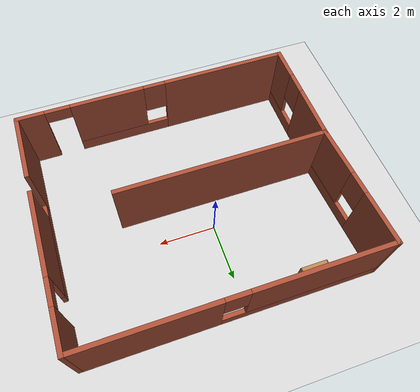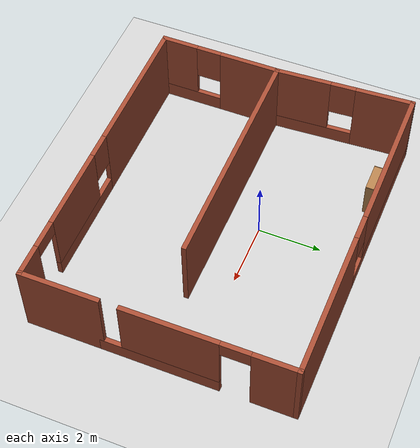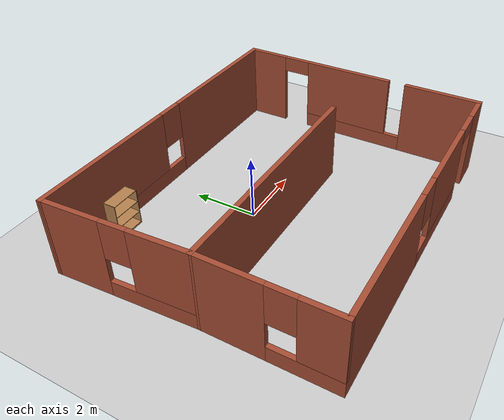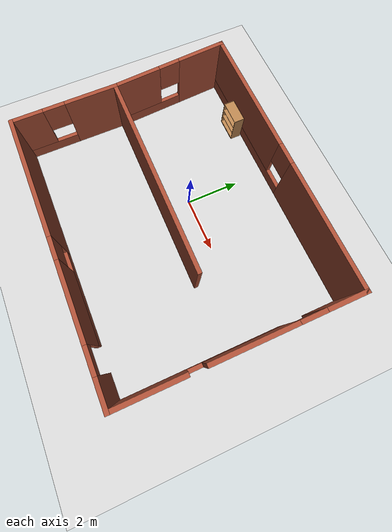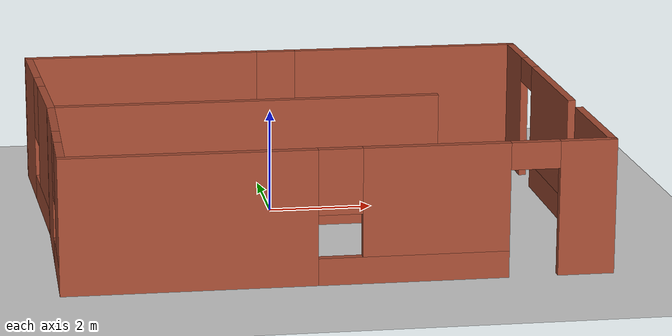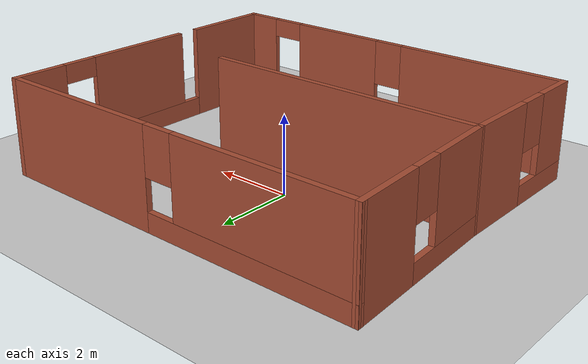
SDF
<sdf version="1.7">
 <world name="default">
  <light name="sun" type="directional">
   <pose>0 0 10 0 -0 0</pose>
   <diffuse>0.8 0.8 0.8 1</diffuse>
   <specular>0.2 0.2 0.2 1</specular>
   <attenuation>
    <range>1000</range>
    <constant>0.9</constant>
    <linear>0.01</linear>
    <quadratic>0.001</quadratic>
   </attenuation>
   <direction>-0.5 0.1 -0.9</direction>
   <spot><inner_angle>0</inner_angle><outer_angle>0</outer_angle><falloff>0</falloff></spot>
  </light>
  <model name="ground_plane">
   <static>1</static>
   <link name="link">
    <collision name="collision">
     <geometry><plane><normal>0 0 1</normal><size>100 100</size></plane></geometry>
     <surface><friction><ode><mu>100</mu><mu2>50</mu2></ode></friction></surface>
    </collision>
    <visual name="visual">
     <cast_shadows>0</cast_shadows>
     <geometry><plane><normal>0 0 1</normal><size>100 100</size></plane></geometry>
     <material>
      <script><uri>file://media/materials/scripts/gazebo.material</uri><name>Gazebo/Grey</name></script>
     </material>
    </visual>
   </link>
  </model>
  <gravity>0 0 -9.8</gravity>
  <magnetic_field>6e-06 2.3e-05 -4.2e-05</magnetic_field>
  <atmosphere type="adiabatic"/>
  <physics type="ode">
   <max_step_size>0.001</max_step_size>
   <real_time_factor>1</real_time_factor>
   <real_time_update_rate>1000</real_time_update_rate>
  </physics>
  <scene><ambient>0.4 0.4 0.4 1</ambient><background>0.7 0.7 0.7 1</background><shadows>1</shadows></scene>
  <spherical_coordinates>
   <surface_model>EARTH_WGS84</surface_model>
   <latitude_deg>0</latitude_deg>
   <longitude_deg>0</longitude_deg>
   <elevation>0</elevation>
   <heading_deg>0</heading_deg>
  </spherical_coordinates>
  <model name="house">
   <pose>0.48791 -0.84791 0 0 -0 0</pose>
   <link name="Wall_0">
    <pose>-4.79791 -2.17709 0 0 -0 -1.5708</pose>
    <visual name="Wall_0_Visual_0">
     <pose>-1.00865 0 1.25 0 -0 0</pose>
     <geometry><box><size>1.9827 0.15 2.5</size></box></geometry>
     <material>
      <script><uri>file://media/materials/scripts/gazebo.material</uri><name>Gazebo/Bricks</name></script>
      <ambient>1 1 1 1</ambient>
     </material>
     <meta><layer>0</layer></meta>
    </visual>
    <collision name="Wall_0_Collision_0">
     <geometry><box><size>1.9827 0.15 2.5</size></box></geometry>
     <pose>-1.00865 0 1.25 0 -0 0</pose>
    </collision>
    <visual name="Wall_0_Visual_1">
     <pose>0.991352 0 0.25 0 -0 0</pose>
     <geometry><box><size>2.01729 0.15 0.5</size></box></geometry>
     <material>
      <script><uri>file://media/materials/scripts/gazebo.material</uri><name>Gazebo/Bricks</name></script>
      <ambient>1 1 1 1</ambient>
     </material>
     <meta><layer>0</layer></meta>
    </visual>
    <collision name="Wall_0_Collision_1">
     <geometry><box><size>2.01729 0.15 0.5</size></box></geometry>
     <pose>0.991352 0 0.25 0 -0 0</pose>
    </collision>
    <visual name="Wall_0_Visual_2">
     <pose>1.39135 0 1.5 0 -0 0</pose>
     <geometry><box><size>1.2173 0.15 2</size></box></geometry>
     <material>
      <script><uri>file://media/materials/scripts/gazebo.material</uri><name>Gazebo/Bricks</name></script>
      <ambient>1 1 1 1</ambient>
     </material>
     <meta><layer>0</layer></meta>
    </visual>
    <collision name="Wall_0_Collision_2">
     <geometry><box><size>1.2173 0.15 2</size></box></geometry>
     <pose>1.39135 0 1.5 0 -0 0</pose>
    </collision>
    <visual name="Wall_0_Visual_3">
     <pose>0.382705 0 1.9 0 -0 0</pose>
     <geometry><box><size>0.8 0.15 1.2</size></box></geometry>
     <material>
      <script><uri>file://media/materials/scripts/gazebo.material</uri><name>Gazebo/Bricks</name></script>
      <ambient>1 1 1 1</ambient>
     </material>
     <meta><layer>0</layer></meta>
    </visual>
    <collision name="Wall_0_Collision_3">
     <geometry><box><size>0.8 0.15 1.2</size></box></geometry>
     <pose>0.382705 0 1.9 0 -0 0</pose>
    </collision>
   </link>
   <link name="Wall_1">
    <pose>0.12709 -4.10209 0 0 -0 0</pose>
    <visual name="Wall_1_Visual_0">
     <pose>-2.70574 0 1.25 0 -0 0</pose>
     <geometry><box><size>4.58852 0.15 2.5</size></box></geometry>
     <material>
      <script><uri>file://media/materials/scripts/gazebo.material</uri><name>Gazebo/Bricks</name></script>
      <ambient>1 1 1 1</ambient>
     </material>
     <meta><layer>0</layer></meta>
    </visual>
    <collision name="Wall_1_Collision_0">
     <geometry><box><size>4.58852 0.15 2.5</size></box></geometry>
     <pose>-2.70574 0 1.25 0 -0 0</pose>
    </collision>
    <visual name="Wall_1_Visual_1">
     <pose>4.47919 0 1.25 0 -0 0</pose>
     <geometry><box><size>1.04161 0.15 2.5</size></box></geometry>
     <material>
      <script><uri>file://media/materials/scripts/gazebo.material</uri><name>Gazebo/Bricks</name></script>
      <ambient>1 1 1 1</ambient>
     </material>
     <meta><layer>0</layer></meta>
    </visual>
    <collision name="Wall_1_Collision_1">
     <geometry><box><size>1.04161 0.15 2.5</size></box></geometry>
     <pose>4.47919 0 1.25 0 -0 0</pose>
    </collision>
    <visual name="Wall_1_Visual_2">
     <pose>1.32345 0 0.25 0 -0 0</pose>
     <geometry><box><size>3.46988 0.15 0.5</size></box></geometry>
     <material>
      <script><uri>file://media/materials/scripts/gazebo.material</uri><name>Gazebo/Bricks</name></script>
      <ambient>1 1 1 1</ambient>
     </material>
     <meta><layer>0</layer></meta>
    </visual>
    <collision name="Wall_1_Collision_2">
     <geometry><box><size>3.46988 0.15 0.5</size></box></geometry>
     <pose>1.32345 0 0.25 0 -0 0</pose>
    </collision>
    <visual name="Wall_1_Visual_3">
     <pose>1.72345 0 1.5 0 -0 0</pose>
     <geometry><box><size>2.66988 0.15 2</size></box></geometry>
     <material>
      <script><uri>file://media/materials/scripts/gazebo.material</uri><name>Gazebo/Bricks</name></script>
      <ambient>1 1 1 1</ambient>
     </material>
     <meta><layer>0</layer></meta>
    </visual>
    <collision name="Wall_1_Collision_3">
     <geometry><box><size>2.66988 0.15 2</size></box></geometry>
     <pose>1.72345 0 1.5 0 -0 0</pose>
    </collision>
    <visual name="Wall_1_Visual_4">
     <pose>-0.011485 0 1.9 0 -0 0</pose>
     <geometry><box><size>0.8 0.15 1.2</size></box></geometry>
     <material>
      <script><uri>file://media/materials/scripts/gazebo.material</uri><name>Gazebo/Bricks</name></script>
      <ambient>1 1 1 1</ambient>
     </material>
     <meta><layer>0</layer></meta>
    </visual>
    <collision name="Wall_1_Collision_4">
     <geometry><box><size>0.8 0.15 1.2</size></box></geometry>
     <pose>-0.011485 0 1.9 0 -0 0</pose>
    </collision>
    <visual name="Wall_1_Visual_5">
     <pose>3.50839 0 2.25 0 -0 0</pose>
     <geometry><box><size>0.9 0.15 0.5</size></box></geometry>
     <material>
      <script><uri>file://media/materials/scripts/gazebo.material</uri><name>Gazebo/Bricks</name></script>
      <ambient>1 1 1 1</ambient>
     </material>
     <meta><layer>0</layer></meta>
    </visual>
    <collision name="Wall_1_Collision_5">
     <geometry><box><size>0.9 0.15 0.5</size></box></geometry>
     <pose>3.50839 0 2.25 0 -0 0</pose>
    </collision>
   </link>
   <link name="Wall_2">
    <collision name="Wall_2_Collision">
     <geometry><box><size>2.5 0.15 2.5</size></box></geometry>
     <pose>0 0 1.25 0 -0 0</pose>
    </collision>
    <visual name="Wall_2_Visual">
     <pose>0 0 1.25 0 -0 0</pose>
     <geometry><box><size>2.5 0.15 2.5</size></box></geometry>
     <material>
      <script><uri>file://media/materials/scripts/gazebo.material</uri><name>Gazebo/Bricks</name></script>
      <ambient>1 1 1 1</ambient>
     </material>
     <meta><layer>0</layer></meta>
    </visual>
    <pose>5.05209 -2.92709 0 0 -0 1.5708</pose>
   </link>
   <link name="Wall_3">
    <pose>5.05209 1.17291 0 0 -0 1.5708</pose>
    <visual name="Wall_3_Visual_0">
     <pose>-1.16767 0 0.25 0 -0 0</pose>
     <geometry><box><size>3.66467 0.15 0.5</size></box></geometry>
     <material>
      <script><uri>file://media/materials/scripts/gazebo.material</uri><name>Gazebo/Bricks</name></script>
      <ambient>1 1 1 1</ambient>
     </material>
     <meta><layer>0</layer></meta>
    </visual>
    <collision name="Wall_3_Collision_0">
     <geometry><box><size>3.66467 0.15 0.5</size></box></geometry>
     <pose>-1.16767 0 0.25 0 -0 0</pose>
    </collision>
    <visual name="Wall_3_Visual_1">
     <pose>2.28233 0 1.25 0 -0 0</pose>
     <geometry><box><size>1.43533 0.15 2.5</size></box></geometry>
     <material>
      <script><uri>file://media/materials/scripts/gazebo.material</uri><name>Gazebo/Bricks</name></script>
      <ambient>1 1 1 1</ambient>
     </material>
     <meta><layer>0</layer></meta>
    </visual>
    <collision name="Wall_3_Collision_1">
     <geometry><box><size>1.43533 0.15 2.5</size></box></geometry>
     <pose>2.28233 0 1.25 0 -0 0</pose>
    </collision>
    <visual name="Wall_3_Visual_2">
     <pose>-0.821123 0 1.5 0 -0 0</pose>
     <geometry><box><size>2.97158 0.15 2</size></box></geometry>
     <material>
      <script><uri>file://media/materials/scripts/gazebo.material</uri><name>Gazebo/Bricks</name></script>
      <ambient>1 1 1 1</ambient>
     </material>
     <meta><layer>0</layer></meta>
    </visual>
    <collision name="Wall_3_Collision_2">
     <geometry><box><size>2.97158 0.15 2</size></box></geometry>
     <pose>-0.821123 0 1.5 0 -0 0</pose>
    </collision>
    <visual name="Wall_3_Visual_3">
     <pose>1.11467 0 2.25 0 -0 0</pose>
     <geometry><box><size>0.9 0.15 0.5</size></box></geometry>
     <material>
      <script><uri>file://media/materials/scripts/gazebo.material</uri><name>Gazebo/Bricks</name></script>
      <ambient>1 1 1 1</ambient>
     </material>
     <meta><layer>0</layer></meta>
    </visual>
    <collision name="Wall_3_Collision_3">
     <geometry><box><size>0.9 0.15 0.5</size></box></geometry>
     <pose>1.11467 0 2.25 0 -0 0</pose>
    </collision>
   </link>
   <link name="Wall_4">
    <pose>0.00209 4.09791 0 0 -0 3.14159</pose>
    <visual name="Wall_4_Visual_0">
     <pose>-2.78909 0 1.25 0 -0 0</pose>
     <geometry><box><size>4.67183 0.15 2.5</size></box></geometry>
     <material>
      <script><uri>file://media/materials/scripts/gazebo.material</uri><name>Gazebo/Bricks</name></script>
      <ambient>1 1 1 1</ambient>
     </material>
     <meta><layer>0</layer></meta>
    </visual>
    <collision name="Wall_4_Collision_0">
     <geometry><box><size>4.67183 0.15 2.5</size></box></geometry>
     <pose>-2.78909 0 1.25 0 -0 0</pose>
    </collision>
    <visual name="Wall_4_Visual_1">
     <pose>2.33591 0 0.25 0 -0 0</pose>
     <geometry><box><size>5.57817 0.15 0.5</size></box></geometry>
     <material>
      <script><uri>file://media/materials/scripts/gazebo.material</uri><name>Gazebo/Bricks</name></script>
      <ambient>1 1 1 1</ambient>
     </material>
     <meta><layer>0</layer></meta>
    </visual>
    <collision name="Wall_4_Collision_1">
     <geometry><box><size>5.57817 0.15 0.5</size></box></geometry>
     <pose>2.33591 0 0.25 0 -0 0</pose>
    </collision>
    <visual name="Wall_4_Visual_2">
     <pose>2.73591 0 1.5 0 -0 0</pose>
     <geometry><box><size>4.77817 0.15 2</size></box></geometry>
     <material>
      <script><uri>file://media/materials/scripts/gazebo.material</uri><name>Gazebo/Bricks</name></script>
      <ambient>1 1 1 1</ambient>
     </material>
     <meta><layer>0</layer></meta>
    </visual>
    <collision name="Wall_4_Collision_2">
     <geometry><box><size>4.77817 0.15 2</size></box></geometry>
     <pose>2.73591 0 1.5 0 -0 0</pose>
    </collision>
    <visual name="Wall_4_Visual_3">
     <pose>-0.053174 0 1.9 0 -0 0</pose>
     <geometry><box><size>0.8 0.15 1.2</size></box></geometry>
     <material>
      <script><uri>file://media/materials/scripts/gazebo.material</uri><name>Gazebo/Bricks</name></script>
      <ambient>1 1 1 1</ambient>
     </material>
     <meta><layer>0</layer></meta>
    </visual>
    <collision name="Wall_4_Collision_3">
     <geometry><box><size>0.8 0.15 1.2</size></box></geometry>
     <pose>-0.053174 0 1.9 0 -0 0</pose>
    </collision>
   </link>
   <link name="Wall_5">
    <pose>-4.92291 1.92291 0 0 -0 -1.51339</pose>
    <visual name="Wall_5_Visual_0">
     <pose>-1.31835 0 1.25 0 -0 0</pose>
     <geometry><box><size>1.87048 0.15 2.5</size></box></geometry>
     <material>
      <script><uri>file://media/materials/scripts/gazebo.material</uri><name>Gazebo/Bricks</name></script>
      <ambient>1 1 1 1</ambient>
     </material>
     <meta><layer>0</layer></meta>
    </visual>
    <collision name="Wall_5_Collision_0">
     <geometry><box><size>1.87048 0.15 2.5</size></box></geometry>
     <pose>-1.31835 0 1.25 0 -0 0</pose>
    </collision>
    <visual name="Wall_5_Visual_1">
     <pose>0.935239 0 0.25 0 -0 0</pose>
     <geometry><box><size>2.6367 0.15 0.5</size></box></geometry>
     <material>
      <script><uri>file://media/materials/scripts/gazebo.material</uri><name>Gazebo/Bricks</name></script>
      <ambient>1 1 1 1</ambient>
     </material>
     <meta><layer>0</layer></meta>
    </visual>
    <collision name="Wall_5_Collision_1">
     <geometry><box><size>2.6367 0.15 0.5</size></box></geometry>
     <pose>0.935239 0 0.25 0 -0 0</pose>
    </collision>
    <visual name="Wall_5_Visual_2">
     <pose>1.33524 0 1.5 0 -0 0</pose>
     <geometry><box><size>1.8367 0.15 2</size></box></geometry>
     <material>
      <script><uri>file://media/materials/scripts/gazebo.material</uri><name>Gazebo/Bricks</name></script>
      <ambient>1 1 1 1</ambient>
     </material>
     <meta><layer>0</layer></meta>
    </visual>
    <collision name="Wall_5_Collision_2">
     <geometry><box><size>1.8367 0.15 2</size></box></geometry>
     <pose>1.33524 0 1.5 0 -0 0</pose>
    </collision>
    <visual name="Wall_5_Visual_3">
     <pose>0.01689 0 1.9 0 -0 0</pose>
     <geometry><box><size>0.8 0.15 1.2</size></box></geometry>
     <material>
      <script><uri>file://media/materials/scripts/gazebo.material</uri><name>Gazebo/Bricks</name></script>
      <ambient>1 1 1 1</ambient>
     </material>
     <meta><layer>0</layer></meta>
    </visual>
    <collision name="Wall_5_Collision_3">
     <geometry><box><size>0.8 0.15 1.2</size></box></geometry>
     <pose>0.01689 0 1.9 0 -0 0</pose>
    </collision>
   </link>
   <link name="Wall_6">
    <collision name="Wall_6_Collision">
     <geometry><box><size>7.5 0.15 2.5</size></box></geometry>
     <pose>0 0 1.25 0 -0 0</pose>
    </collision>
    <visual name="Wall_6_Visual">
     <pose>0 0 1.25 0 -0 0</pose>
     <geometry><box><size>7.5 0.15 2.5</size></box></geometry>
     <material>
      <script><uri>file://media/materials/scripts/gazebo.material</uri><name>Gazebo/Bricks</name></script>
      <ambient>1 1 1 1</ambient>
     </material>
     <meta><layer>0</layer></meta>
    </visual>
    <pose>-1.12291 -0.25209 0 0 -0 0</pose>
   </link>
   <static>1</static>
  </model>
  <model name="Bookshelf">
   <static>1</static>
   <link name="link">
    <inertial><mass>1</mass></inertial>
    <collision name="back">
     <pose>0 0.005 0.6 0 -0 0</pose>
     <geometry><box><size>0.9 0.01 1.2</size></box></geometry>
    </collision>
    <visual name="visual1">
     <pose>0 0.005 0.6 0 -0 0</pose>
     <geometry><box><size>0.9 0.01 1.2</size></box></geometry>
     <material>
      <diffuse>1 1 1 1</diffuse>
      <script><uri>file://media/materials/scripts/gazebo.material</uri><name>Gazebo/Wood</name></script>
      <pbr><metal><albedo_map>model://Bookshelf/bookshelf_diffuse.jpg</albedo_map></metal></pbr>
     </material>
    </visual>
    <collision name="left_side">
     <pose>0.45 -0.195 0.6 0 -0 0</pose>
     <geometry><box><size>0.02 0.4 1.2</size></box></geometry>
    </collision>
    <visual name="visual2">
     <pose>0.45 -0.195 0.6 0 -0 0</pose>
     <geometry><box><size>0.02 0.4 1.2</size></box></geometry>
     <material>
      <diffuse>1 1 1 1</diffuse>
      <script><uri>file://media/materials/scripts/gazebo.material</uri><name>Gazebo/Wood</name></script>
      <pbr><metal><albedo_map>model://Bookshelf/bookshelf_diffuse.jpg</albedo_map></metal></pbr>
     </material>
    </visual>
    <collision name="right_side">
     <pose>-0.45 -0.195 0.6 0 -0 0</pose>
     <geometry><box><size>0.02 0.4 1.2</size></box></geometry>
    </collision>
    <visual name="visual3">
     <pose>-0.45 -0.195 0.6 0 -0 0</pose>
     <geometry><box><size>0.02 0.4 1.2</size></box></geometry>
     <material>
      <diffuse>1 1 1 1</diffuse>
      <script><uri>file://media/materials/scripts/gazebo.material</uri><name>Gazebo/Wood</name></script>
      <pbr><metal><albedo_map>model://Bookshelf/bookshelf_diffuse.jpg</albedo_map></metal></pbr>
     </material>
    </visual>
    <collision name="bottom">
     <pose>0 -0.195 0.03 0 -0 0</pose>
     <geometry><box><size>0.88 0.4 0.06</size></box></geometry>
    </collision>
    <visual name="visual4">
     <pose>0 -0.195 0.03 0 -0 0</pose>
     <geometry><box><size>0.88 0.4 0.06</size></box></geometry>
     <material>
      <diffuse>1 1 1 1</diffuse>
      <script><uri>file://media/materials/scripts/gazebo.material</uri><name>Gazebo/Wood</name></script>
      <pbr><metal><albedo_map>model://Bookshelf/bookshelf_diffuse.jpg</albedo_map></metal></pbr>
     </material>
    </visual>
    <collision name="top">
     <pose>0 -0.195 1.19 0 -0 0</pose>
     <geometry><box><size>0.88 0.4 0.02</size></box></geometry>
    </collision>
    <visual name="visual5">
     <pose>0 -0.195 1.19 0 -0 0</pose>
     <geometry><box><size>0.88 0.4 0.02</size></box></geometry>
     <material>
      <diffuse>1 1 1 1</diffuse>
      <script><uri>file://media/materials/scripts/gazebo.material</uri><name>Gazebo/Wood</name></script>
      <pbr><metal><albedo_map>model://Bookshelf/bookshelf_diffuse.jpg</albedo_map></metal></pbr>
     </material>
    </visual>
    <collision name="low_shelf">
     <pose>0 -0.195 0.43 0 -0 0</pose>
     <geometry><box><size>0.88 0.4 0.02</size></box></geometry>
    </collision>
    <visual name="visual6">
     <pose>0 -0.195 0.43 0 -0 0</pose>
     <geometry><box><size>0.88 0.4 0.02</size></box></geometry>
     <material>
      <diffuse>1 1 1 1</diffuse>
      <script><uri>file://media/materials/scripts/gazebo.material</uri><name>Gazebo/Wood</name></script>
      <pbr><metal><albedo_map>model://Bookshelf/bookshelf_diffuse.jpg</albedo_map></metal></pbr>
     </material>
    </visual>
    <collision name="high_shelf">
     <pose>0 -0.195 0.8 0 -0 0</pose>
     <geometry><box><size>0.88 0.4 0.02</size></box></geometry>
    </collision>
    <visual name="visual7">
     <pose>0 -0.195 0.8 0 -0 0</pose>
     <geometry><box><size>0.88 0.4 0.02</size></box></geometry>
     <material>
      <diffuse>1 1 1 1</diffuse>
      <script><uri>file://media/materials/scripts/gazebo.material</uri><name>Gazebo/Wood</name></script>
      <pbr><metal><albedo_map>model://Bookshelf/bookshelf_diffuse.jpg</albedo_map></metal></pbr>
     </material>
    </visual>
   </link>
   <pose>-2.35535 3.11492 0 0 -0 0</pose>
  </model>
 </world>
</sdf>
